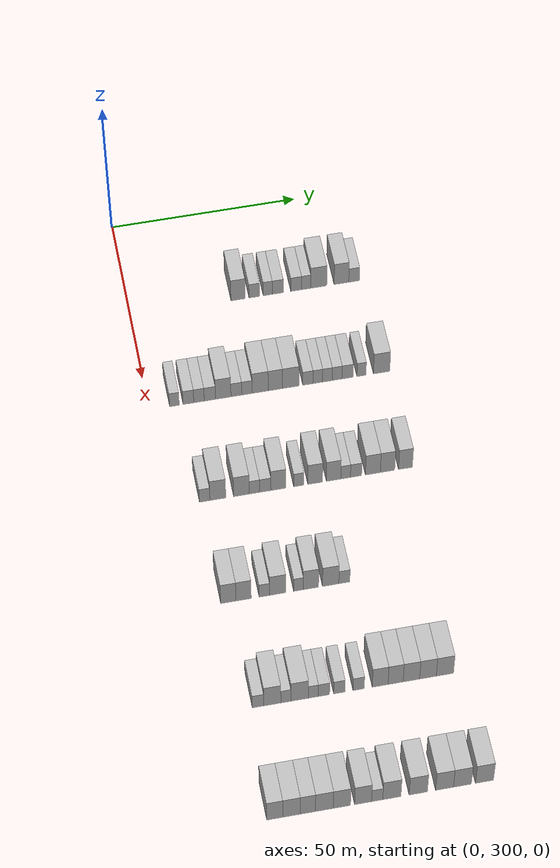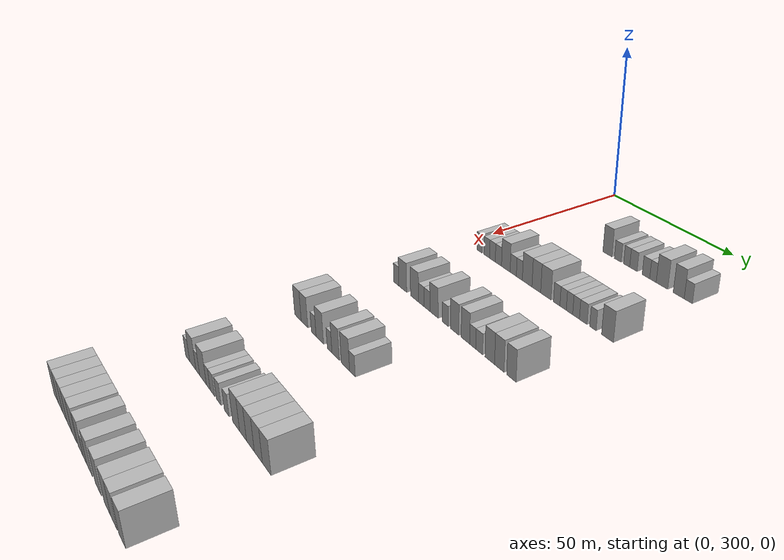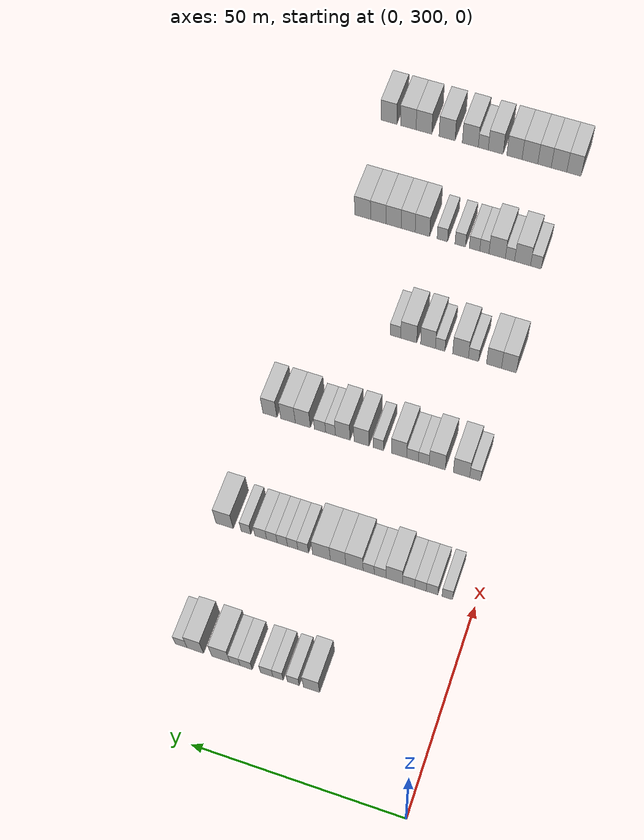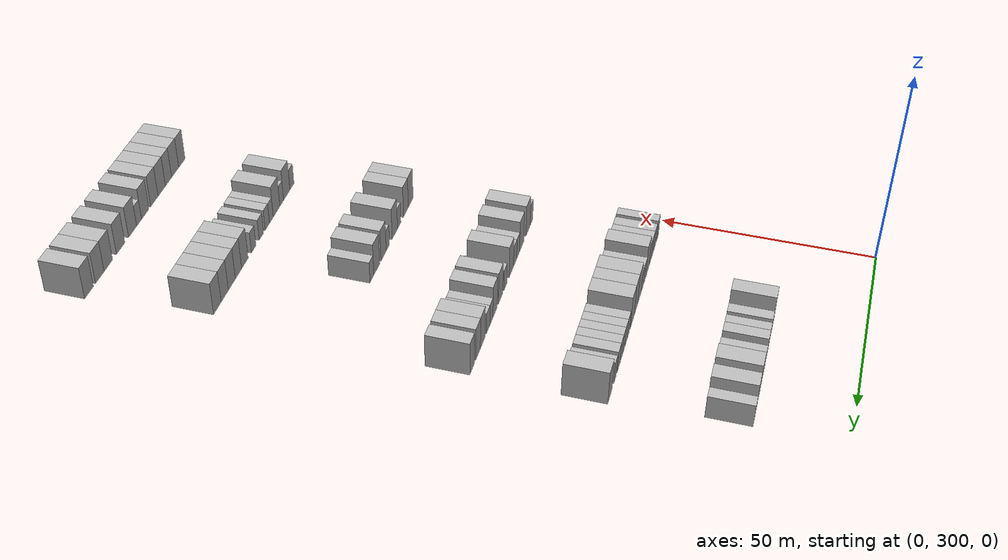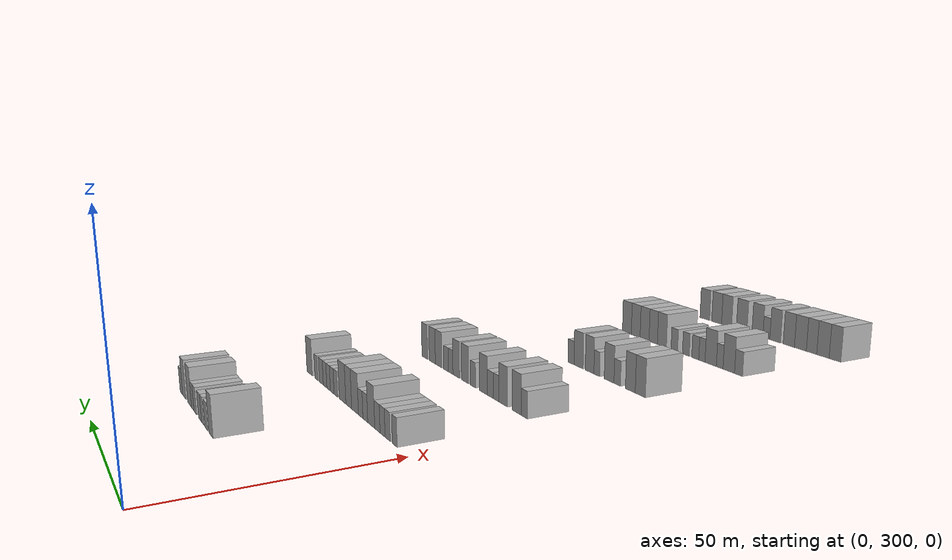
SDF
<sdf version="1.6">
 <world name="default">
  <model name="building_187">
   <static>1</static>
   <pose>25.0000 329.0167 0 0.000000 0.000000 0.000000</pose>
   <link name="link">
    <pose>0 0 4.50 0 0 0</pose>
    <collision name="collision"><geometry><box><size>10.0000 3.8626 9.0000</size></box></geometry></collision>
    <visual name="visual">
     <cast_shadows>0</cast_shadows>
     <geometry><box><size>10.0000 3.8626 9.0000</size></box></geometry>
     <material>
      <script>
       <uri>model://HANNAS_wall/materials/scripts</uri>
       <uri>model://HANNAS_wall/materials/textures</uri>
       <name>vrc/HANNAS_wall</name>
      </script>
     </material>
    </visual>
   </link>
  </model>
  <model name="building_188">
   <static>1</static>
   <pose>25.0000 333.3617 0 0.000000 0.000000 0.000000</pose>
   <link name="link">
    <pose>0 0 3.00 0 0 0</pose>
    <collision name="collision"><geometry><box><size>10.0000 2.8275 6.0000</size></box></geometry></collision>
    <visual name="visual">
     <cast_shadows>0</cast_shadows>
     <geometry><box><size>10.0000 2.8275 6.0000</size></box></geometry>
     <material>
      <script>
       <uri>model://HANNAS_wall/materials/scripts</uri>
       <uri>model://HANNAS_wall/materials/textures</uri>
       <name>vrc/HANNAS_wall</name>
      </script>
     </material>
    </visual>
   </link>
  </model>
  <model name="building_189">
   <static>1</static>
   <pose>25.0000 337.0055 0 0.000000 0.000000 0.000000</pose>
   <link name="link">
    <pose>0 0 3.00 0 0 0</pose>
    <collision name="collision"><geometry><box><size>10.0000 2.4600 6.0000</size></box></geometry></collision>
    <visual name="visual">
     <cast_shadows>0</cast_shadows>
     <geometry><box><size>10.0000 2.4600 6.0000</size></box></geometry>
     <material>
      <script>
       <uri>model://HANNAS_wall/materials/scripts</uri>
       <uri>model://HANNAS_wall/materials/textures</uri>
       <name>vrc/HANNAS_wall</name>
      </script>
     </material>
    </visual>
   </link>
  </model>
  <model name="building_190">
   <static>1</static>
   <pose>25.0000 339.7276 0 0.000000 0.000000 0.000000</pose>
   <link name="link">
    <pose>0 0 3.00 0 0 0</pose>
    <collision name="collision"><geometry><box><size>10.0000 2.9843 6.0000</size></box></geometry></collision>
    <visual name="visual">
     <cast_shadows>0</cast_shadows>
     <geometry><box><size>10.0000 2.9843 6.0000</size></box></geometry>
     <material>
      <script>
       <uri>model://HANNAS_wall/materials/scripts</uri>
       <uri>model://HANNAS_wall/materials/textures</uri>
       <name>vrc/HANNAS_wall</name>
      </script>
     </material>
    </visual>
   </link>
  </model>
  <model name="building_191">
   <static>1</static>
   <pose>25.0000 344.6807 0 0.000000 0.000000 0.000000</pose>
   <link name="link">
    <pose>0 0 3.00 0 0 0</pose>
    <collision name="collision"><geometry><box><size>10.0000 2.9218 6.0000</size></box></geometry></collision>
    <visual name="visual">
     <cast_shadows>0</cast_shadows>
     <geometry><box><size>10.0000 2.9218 6.0000</size></box></geometry>
     <material>
      <script>
       <uri>model://HANNAS_wall/materials/scripts</uri>
       <uri>model://HANNAS_wall/materials/textures</uri>
       <name>vrc/HANNAS_wall</name>
      </script>
     </material>
    </visual>
   </link>
  </model>
  <model name="building_192">
   <static>1</static>
   <pose>25.0000 347.3829 0 0.000000 0.000000 0.000000</pose>
   <link name="link">
    <pose>0 0 3.00 0 0 0</pose>
    <collision name="collision"><geometry><box><size>10.0000 2.4827 6.0000</size></box></geometry></collision>
    <visual name="visual">
     <cast_shadows>0</cast_shadows>
     <geometry><box><size>10.0000 2.4827 6.0000</size></box></geometry>
     <material>
      <script>
       <uri>model://HANNAS_wall/materials/scripts</uri>
       <uri>model://HANNAS_wall/materials/textures</uri>
       <name>vrc/HANNAS_wall</name>
      </script>
     </material>
    </visual>
   </link>
  </model>
  <model name="building_193">
   <static>1</static>
   <pose>25.0000 350.7998 0 0.000000 0.000000 0.000000</pose>
   <link name="link">
    <pose>0 0 4.50 0 0 0</pose>
    <collision name="collision"><geometry><box><size>10.0000 4.3511 9.0000</size></box></geometry></collision>
    <visual name="visual">
     <cast_shadows>0</cast_shadows>
     <geometry><box><size>10.0000 4.3511 9.0000</size></box></geometry>
     <material>
      <script>
       <uri>model://HANNAS_wall/materials/scripts</uri>
       <uri>model://HANNAS_wall/materials/textures</uri>
       <name>vrc/HANNAS_wall</name>
      </script>
     </material>
    </visual>
   </link>
  </model>
  <model name="building_194">
   <static>1</static>
   <pose>25.0000 356.9652 0 0.000000 0.000000 0.000000</pose>
   <link name="link">
    <pose>0 0 4.50 0 0 0</pose>
    <collision name="collision"><geometry><box><size>10.0000 3.9796 9.0000</size></box></geometry></collision>
    <visual name="visual">
     <cast_shadows>0</cast_shadows>
     <geometry><box><size>10.0000 3.9796 9.0000</size></box></geometry>
     <material>
      <script>
       <uri>model://HANNAS_wall/materials/scripts</uri>
       <uri>model://HANNAS_wall/materials/textures</uri>
       <name>vrc/HANNAS_wall</name>
      </script>
     </material>
    </visual>
   </link>
  </model>
  <model name="building_195">
   <static>1</static>
   <pose>25.0000 360.4065 0 0.000000 0.000000 0.000000</pose>
   <link name="link">
    <pose>0 0 3.00 0 0 0</pose>
    <collision name="collision"><geometry><box><size>10.0000 2.9032 6.0000</size></box></geometry></collision>
    <visual name="visual">
     <cast_shadows>0</cast_shadows>
     <geometry><box><size>10.0000 2.9032 6.0000</size></box></geometry>
     <material>
      <script>
       <uri>model://HANNAS_wall/materials/scripts</uri>
       <uri>model://HANNAS_wall/materials/textures</uri>
       <name>vrc/HANNAS_wall</name>
      </script>
     </material>
    </visual>
   </link>
  </model>
  <model name="building_403">
   <static>1</static>
   <pose>55.0000 306.7584 0 0.000000 0.000000 0.000000</pose>
   <link name="link">
    <pose>0 0 3.00 0 0 0</pose>
    <collision name="collision"><geometry><box><size>10.0000 2.5424 6.0000</size></box></geometry></collision>
    <visual name="visual">
     <cast_shadows>0</cast_shadows>
     <geometry><box><size>10.0000 2.5424 6.0000</size></box></geometry>
     <material>
      <script>
       <uri>model://HANNAS_wall/materials/scripts</uri>
       <uri>model://HANNAS_wall/materials/textures</uri>
       <name>vrc/HANNAS_wall</name>
      </script>
     </material>
    </visual>
   </link>
  </model>
  <model name="building_404">
   <static>1</static>
   <pose>55.0000 310.4410 0 0.000000 0.000000 0.000000</pose>
   <link name="link">
    <pose>0 0 3.00 0 0 0</pose>
    <collision name="collision"><geometry><box><size>10.0000 2.8229 6.0000</size></box></geometry></collision>
    <visual name="visual">
     <cast_shadows>0</cast_shadows>
     <geometry><box><size>10.0000 2.8229 6.0000</size></box></geometry>
     <material>
      <script>
       <uri>model://HANNAS_wall/materials/scripts</uri>
       <uri>model://HANNAS_wall/materials/textures</uri>
       <name>vrc/HANNAS_wall</name>
      </script>
     </material>
    </visual>
   </link>
  </model>
  <model name="building_405">
   <static>1</static>
   <pose>55.0000 313.2252 0 0.000000 0.000000 0.000000</pose>
   <link name="link">
    <pose>0 0 3.00 0 0 0</pose>
    <collision name="collision"><geometry><box><size>10.0000 2.7456 6.0000</size></box></geometry></collision>
    <visual name="visual">
     <cast_shadows>0</cast_shadows>
     <geometry><box><size>10.0000 2.7456 6.0000</size></box></geometry>
     <material>
      <script>
       <uri>model://HANNAS_wall/materials/scripts</uri>
       <uri>model://HANNAS_wall/materials/textures</uri>
       <name>vrc/HANNAS_wall</name>
      </script>
     </material>
    </visual>
   </link>
  </model>
  <model name="building_406">
   <static>1</static>
   <pose>55.0000 316.0895 0 0.000000 0.000000 0.000000</pose>
   <link name="link">
    <pose>0 0 3.00 0 0 0</pose>
    <collision name="collision"><geometry><box><size>10.0000 2.9829 6.0000</size></box></geometry></collision>
    <visual name="visual">
     <cast_shadows>0</cast_shadows>
     <geometry><box><size>10.0000 2.9829 6.0000</size></box></geometry>
     <material>
      <script>
       <uri>model://HANNAS_wall/materials/scripts</uri>
       <uri>model://HANNAS_wall/materials/textures</uri>
       <name>vrc/HANNAS_wall</name>
      </script>
     </material>
    </visual>
   </link>
  </model>
  <model name="building_407">
   <static>1</static>
   <pose>55.0000 319.6038 0 0.000000 0.000000 0.000000</pose>
   <link name="link">
    <pose>0 0 4.50 0 0 0</pose>
    <collision name="collision"><geometry><box><size>10.0000 4.0458 9.0000</size></box></geometry></collision>
    <visual name="visual">
     <cast_shadows>0</cast_shadows>
     <geometry><box><size>10.0000 4.0458 9.0000</size></box></geometry>
     <material>
      <script>
       <uri>model://HANNAS_wall/materials/scripts</uri>
       <uri>model://HANNAS_wall/materials/textures</uri>
       <name>vrc/HANNAS_wall</name>
      </script>
     </material>
    </visual>
   </link>
  </model>
  <model name="building_408">
   <static>1</static>
   <pose>55.0000 323.0591 0 0.000000 0.000000 0.000000</pose>
   <link name="link">
    <pose>0 0 3.00 0 0 0</pose>
    <collision name="collision"><geometry><box><size>10.0000 2.8647 6.0000</size></box></geometry></collision>
    <visual name="visual">
     <cast_shadows>0</cast_shadows>
     <geometry><box><size>10.0000 2.8647 6.0000</size></box></geometry>
     <material>
      <script>
       <uri>model://HANNAS_wall/materials/scripts</uri>
       <uri>model://HANNAS_wall/materials/textures</uri>
       <name>vrc/HANNAS_wall</name>
      </script>
     </material>
    </visual>
   </link>
  </model>
  <model name="building_409">
   <static>1</static>
   <pose>55.0000 325.8462 0 0.000000 0.000000 0.000000</pose>
   <link name="link">
    <pose>0 0 3.00 0 0 0</pose>
    <collision name="collision"><geometry><box><size>10.0000 2.7095 6.0000</size></box></geometry></collision>
    <visual name="visual">
     <cast_shadows>0</cast_shadows>
     <geometry><box><size>10.0000 2.7095 6.0000</size></box></geometry>
     <material>
      <script>
       <uri>model://HANNAS_wall/materials/scripts</uri>
       <uri>model://HANNAS_wall/materials/textures</uri>
       <name>vrc/HANNAS_wall</name>
      </script>
     </material>
    </visual>
   </link>
  </model>
  <model name="building_410">
   <static>1</static>
   <pose>55.0000 329.3355 0 0.000000 0.000000 0.000000</pose>
   <link name="link">
    <pose>0 0 4.50 0 0 0</pose>
    <collision name="collision"><geometry><box><size>10.0000 4.2691 9.0000</size></box></geometry></collision>
    <visual name="visual">
     <cast_shadows>0</cast_shadows>
     <geometry><box><size>10.0000 4.2691 9.0000</size></box></geometry>
     <material>
      <script>
       <uri>model://HANNAS_wall/materials/scripts</uri>
       <uri>model://HANNAS_wall/materials/textures</uri>
       <name>vrc/HANNAS_wall</name>
      </script>
     </material>
    </visual>
   </link>
  </model>
  <model name="building_411">
   <static>1</static>
   <pose>55.0000 333.3582 0 0.000000 0.000000 0.000000</pose>
   <link name="link">
    <pose>0 0 4.50 0 0 0</pose>
    <collision name="collision"><geometry><box><size>10.0000 3.7762 9.0000</size></box></geometry></collision>
    <visual name="visual">
     <cast_shadows>0</cast_shadows>
     <geometry><box><size>10.0000 3.7762 9.0000</size></box></geometry>
     <material>
      <script>
       <uri>model://HANNAS_wall/materials/scripts</uri>
       <uri>model://HANNAS_wall/materials/textures</uri>
       <name>vrc/HANNAS_wall</name>
      </script>
     </material>
    </visual>
   </link>
  </model>
  <model name="building_412">
   <static>1</static>
   <pose>55.0000 337.4349 0 0.000000 0.000000 0.000000</pose>
   <link name="link">
    <pose>0 0 4.50 0 0 0</pose>
    <collision name="collision"><geometry><box><size>10.0000 4.3773 9.0000</size></box></geometry></collision>
    <visual name="visual">
     <cast_shadows>0</cast_shadows>
     <geometry><box><size>10.0000 4.3773 9.0000</size></box></geometry>
     <material>
      <script>
       <uri>model://HANNAS_wall/materials/scripts</uri>
       <uri>model://HANNAS_wall/materials/textures</uri>
       <name>vrc/HANNAS_wall</name>
      </script>
     </material>
    </visual>
   </link>
  </model>
  <model name="building_413">
   <static>1</static>
   <pose>55.0000 341.9503 0 0.000000 0.000000 0.000000</pose>
   <link name="link">
    <pose>0 0 3.00 0 0 0</pose>
    <collision name="collision"><geometry><box><size>10.0000 2.6535 6.0000</size></box></geometry></collision>
    <visual name="visual">
     <cast_shadows>0</cast_shadows>
     <geometry><box><size>10.0000 2.6535 6.0000</size></box></geometry>
     <material>
      <script>
       <uri>model://HANNAS_wall/materials/scripts</uri>
       <uri>model://HANNAS_wall/materials/textures</uri>
       <name>vrc/HANNAS_wall</name>
      </script>
     </material>
    </visual>
   </link>
  </model>
  <model name="building_414">
   <static>1</static>
   <pose>55.0000 344.5648 0 0.000000 0.000000 0.000000</pose>
   <link name="link">
    <pose>0 0 3.00 0 0 0</pose>
    <collision name="collision"><geometry><box><size>10.0000 2.5755 6.0000</size></box></geometry></collision>
    <visual name="visual">
     <cast_shadows>0</cast_shadows>
     <geometry><box><size>10.0000 2.5755 6.0000</size></box></geometry>
     <material>
      <script>
       <uri>model://HANNAS_wall/materials/scripts</uri>
       <uri>model://HANNAS_wall/materials/textures</uri>
       <name>vrc/HANNAS_wall</name>
      </script>
     </material>
    </visual>
   </link>
  </model>
  <model name="building_415">
   <static>1</static>
   <pose>55.0000 347.1284 0 0.000000 0.000000 0.000000</pose>
   <link name="link">
    <pose>0 0 3.00 0 0 0</pose>
    <collision name="collision"><geometry><box><size>10.0000 2.5516 6.0000</size></box></geometry></collision>
    <visual name="visual">
     <cast_shadows>0</cast_shadows>
     <geometry><box><size>10.0000 2.5516 6.0000</size></box></geometry>
     <material>
      <script>
       <uri>model://HANNAS_wall/materials/scripts</uri>
       <uri>model://HANNAS_wall/materials/textures</uri>
       <name>vrc/HANNAS_wall</name>
      </script>
     </material>
    </visual>
   </link>
  </model>
  <model name="building_416">
   <static>1</static>
   <pose>55.0000 349.7211 0 0.000000 0.000000 0.000000</pose>
   <link name="link">
    <pose>0 0 3.00 0 0 0</pose>
    <collision name="collision"><geometry><box><size>10.0000 2.6340 6.0000</size></box></geometry></collision>
    <visual name="visual">
     <cast_shadows>0</cast_shadows>
     <geometry><box><size>10.0000 2.6340 6.0000</size></box></geometry>
     <material>
      <script>
       <uri>model://HANNAS_wall/materials/scripts</uri>
       <uri>model://HANNAS_wall/materials/textures</uri>
       <name>vrc/HANNAS_wall</name>
      </script>
     </material>
    </visual>
   </link>
  </model>
  <model name="building_417">
   <static>1</static>
   <pose>55.0000 352.5141 0 0.000000 0.000000 0.000000</pose>
   <link name="link">
    <pose>0 0 3.00 0 0 0</pose>
    <collision name="collision"><geometry><box><size>10.0000 2.9520 6.0000</size></box></geometry></collision>
    <visual name="visual">
     <cast_shadows>0</cast_shadows>
     <geometry><box><size>10.0000 2.9520 6.0000</size></box></geometry>
     <material>
      <script>
       <uri>model://HANNAS_wall/materials/scripts</uri>
       <uri>model://HANNAS_wall/materials/textures</uri>
       <name>vrc/HANNAS_wall</name>
      </script>
     </material>
    </visual>
   </link>
  </model>
  <model name="building_418">
   <static>1</static>
   <pose>55.0000 356.1965 0 0.000000 0.000000 0.000000</pose>
   <link name="link">
    <pose>0 0 3.00 0 0 0</pose>
    <collision name="collision"><geometry><box><size>10.0000 2.4128 6.0000</size></box></geometry></collision>
    <visual name="visual">
     <cast_shadows>0</cast_shadows>
     <geometry><box><size>10.0000 2.4128 6.0000</size></box></geometry>
     <material>
      <script>
       <uri>model://HANNAS_wall/materials/scripts</uri>
       <uri>model://HANNAS_wall/materials/textures</uri>
       <name>vrc/HANNAS_wall</name>
      </script>
     </material>
    </visual>
   </link>
  </model>
  <model name="building_419">
   <static>1</static>
   <pose>55.0000 361.5701 0 0.000000 0.000000 0.000000</pose>
   <link name="link">
    <pose>0 0 4.50 0 0 0</pose>
    <collision name="collision"><geometry><box><size>10.0000 4.3344 9.0000</size></box></geometry></collision>
    <visual name="visual">
     <cast_shadows>0</cast_shadows>
     <geometry><box><size>10.0000 4.3344 9.0000</size></box></geometry>
     <material>
      <script>
       <uri>model://HANNAS_wall/materials/scripts</uri>
       <uri>model://HANNAS_wall/materials/textures</uri>
       <name>vrc/HANNAS_wall</name>
      </script>
     </material>
    </visual>
   </link>
  </model>
  <model name="building_627">
   <static>1</static>
   <pose>85.0000 309.4168 0 0.000000 0.000000 0.000000</pose>
   <link name="link">
    <pose>0 0 3.00 0 0 0</pose>
    <collision name="collision"><geometry><box><size>10.0000 2.7048 6.0000</size></box></geometry></collision>
    <visual name="visual">
     <cast_shadows>0</cast_shadows>
     <geometry><box><size>10.0000 2.7048 6.0000</size></box></geometry>
     <material>
      <script>
       <uri>model://HANNAS_wall/materials/scripts</uri>
       <uri>model://HANNAS_wall/materials/textures</uri>
       <name>vrc/HANNAS_wall</name>
      </script>
     </material>
    </visual>
   </link>
  </model>
  <model name="building_628">
   <static>1</static>
   <pose>85.0000 312.8184 0 0.000000 0.000000 0.000000</pose>
   <link name="link">
    <pose>0 0 4.50 0 0 0</pose>
    <collision name="collision"><geometry><box><size>10.0000 4.0985 9.0000</size></box></geometry></collision>
    <visual name="visual">
     <cast_shadows>0</cast_shadows>
     <geometry><box><size>10.0000 4.0985 9.0000</size></box></geometry>
     <material>
      <script>
       <uri>model://HANNAS_wall/materials/scripts</uri>
       <uri>model://HANNAS_wall/materials/textures</uri>
       <name>vrc/HANNAS_wall</name>
      </script>
     </material>
    </visual>
   </link>
  </model>
  <model name="building_629">
   <static>1</static>
   <pose>85.0000 318.8882 0 0.000000 0.000000 0.000000</pose>
   <link name="link">
    <pose>0 0 4.50 0 0 0</pose>
    <collision name="collision"><geometry><box><size>10.0000 4.0410 9.0000</size></box></geometry></collision>
    <visual name="visual">
     <cast_shadows>0</cast_shadows>
     <geometry><box><size>10.0000 4.0410 9.0000</size></box></geometry>
     <material>
      <script>
       <uri>model://HANNAS_wall/materials/scripts</uri>
       <uri>model://HANNAS_wall/materials/textures</uri>
       <name>vrc/HANNAS_wall</name>
      </script>
     </material>
    </visual>
   </link>
  </model>
  <model name="building_630">
   <static>1</static>
   <pose>85.0000 322.2535 0 0.000000 0.000000 0.000000</pose>
   <link name="link">
    <pose>0 0 3.00 0 0 0</pose>
    <collision name="collision"><geometry><box><size>10.0000 2.6897 6.0000</size></box></geometry></collision>
    <visual name="visual">
     <cast_shadows>0</cast_shadows>
     <geometry><box><size>10.0000 2.6897 6.0000</size></box></geometry>
     <material>
      <script>
       <uri>model://HANNAS_wall/materials/scripts</uri>
       <uri>model://HANNAS_wall/materials/textures</uri>
       <name>vrc/HANNAS_wall</name>
      </script>
     </material>
    </visual>
   </link>
  </model>
  <model name="building_631">
   <static>1</static>
   <pose>85.0000 325.0554 0 0.000000 0.000000 0.000000</pose>
   <link name="link">
    <pose>0 0 3.00 0 0 0</pose>
    <collision name="collision"><geometry><box><size>10.0000 2.9140 6.0000</size></box></geometry></collision>
    <visual name="visual">
     <cast_shadows>0</cast_shadows>
     <geometry><box><size>10.0000 2.9140 6.0000</size></box></geometry>
     <material>
      <script>
       <uri>model://HANNAS_wall/materials/scripts</uri>
       <uri>model://HANNAS_wall/materials/textures</uri>
       <name>vrc/HANNAS_wall</name>
      </script>
     </material>
    </visual>
   </link>
  </model>
  <model name="building_632">
   <static>1</static>
   <pose>85.0000 328.4569 0 0.000000 0.000000 0.000000</pose>
   <link name="link">
    <pose>0 0 4.50 0 0 0</pose>
    <collision name="collision"><geometry><box><size>10.0000 3.8890 9.0000</size></box></geometry></collision>
    <visual name="visual">
     <cast_shadows>0</cast_shadows>
     <geometry><box><size>10.0000 3.8890 9.0000</size></box></geometry>
     <material>
      <script>
       <uri>model://HANNAS_wall/materials/scripts</uri>
       <uri>model://HANNAS_wall/materials/textures</uri>
       <name>vrc/HANNAS_wall</name>
      </script>
     </material>
    </visual>
   </link>
  </model>
  <model name="building_633">
   <static>1</static>
   <pose>85.0000 333.7280 0 0.000000 0.000000 0.000000</pose>
   <link name="link">
    <pose>0 0 3.00 0 0 0</pose>
    <collision name="collision"><geometry><box><size>10.0000 2.6531 6.0000</size></box></geometry></collision>
    <visual name="visual">
     <cast_shadows>0</cast_shadows>
     <geometry><box><size>10.0000 2.6531 6.0000</size></box></geometry>
     <material>
      <script>
       <uri>model://HANNAS_wall/materials/scripts</uri>
       <uri>model://HANNAS_wall/materials/textures</uri>
       <name>vrc/HANNAS_wall</name>
      </script>
     </material>
    </visual>
   </link>
  </model>
  <model name="building_634">
   <static>1</static>
   <pose>85.0000 337.9695 0 0.000000 0.000000 0.000000</pose>
   <link name="link">
    <pose>0 0 4.50 0 0 0</pose>
    <collision name="collision"><geometry><box><size>10.0000 3.8299 9.0000</size></box></geometry></collision>
    <visual name="visual">
     <cast_shadows>0</cast_shadows>
     <geometry><box><size>10.0000 3.8299 9.0000</size></box></geometry>
     <material>
      <script>
       <uri>model://HANNAS_wall/materials/scripts</uri>
       <uri>model://HANNAS_wall/materials/textures</uri>
       <name>vrc/HANNAS_wall</name>
      </script>
     </material>
    </visual>
   </link>
  </model>
  <model name="building_635">
   <static>1</static>
   <pose>85.0000 342.7593 0 0.000000 0.000000 0.000000</pose>
   <link name="link">
    <pose>0 0 4.50 0 0 0</pose>
    <collision name="collision"><geometry><box><size>10.0000 3.7498 9.0000</size></box></geometry></collision>
    <visual name="visual">
     <cast_shadows>0</cast_shadows>
     <geometry><box><size>10.0000 3.7498 9.0000</size></box></geometry>
     <material>
      <script>
       <uri>model://HANNAS_wall/materials/scripts</uri>
       <uri>model://HANNAS_wall/materials/textures</uri>
       <name>vrc/HANNAS_wall</name>
      </script>
     </material>
    </visual>
   </link>
  </model>
  <model name="building_636">
   <static>1</static>
   <pose>85.0000 345.8847 0 0.000000 0.000000 0.000000</pose>
   <link name="link">
    <pose>0 0 3.00 0 0 0</pose>
    <collision name="collision"><geometry><box><size>10.0000 2.5010 6.0000</size></box></geometry></collision>
    <visual name="visual">
     <cast_shadows>0</cast_shadows>
     <geometry><box><size>10.0000 2.5010 6.0000</size></box></geometry>
     <material>
      <script>
       <uri>model://HANNAS_wall/materials/scripts</uri>
       <uri>model://HANNAS_wall/materials/textures</uri>
       <name>vrc/HANNAS_wall</name>
      </script>
     </material>
    </visual>
   </link>
  </model>
  <model name="building_637">
   <static>1</static>
   <pose>85.0000 348.5860 0 0.000000 0.000000 0.000000</pose>
   <link name="link">
    <pose>0 0 3.00 0 0 0</pose>
    <collision name="collision"><geometry><box><size>10.0000 2.9015 6.0000</size></box></geometry></collision>
    <visual name="visual">
     <cast_shadows>0</cast_shadows>
     <geometry><box><size>10.0000 2.9015 6.0000</size></box></geometry>
     <material>
      <script>
       <uri>model://HANNAS_wall/materials/scripts</uri>
       <uri>model://HANNAS_wall/materials/textures</uri>
       <name>vrc/HANNAS_wall</name>
      </script>
     </material>
    </visual>
   </link>
  </model>
  <model name="building_638">
   <static>1</static>
   <pose>85.0000 352.9813 0 0.000000 0.000000 0.000000</pose>
   <link name="link">
    <pose>0 0 4.50 0 0 0</pose>
    <collision name="collision"><geometry><box><size>10.0000 3.8892 9.0000</size></box></geometry></collision>
    <visual name="visual">
     <cast_shadows>0</cast_shadows>
     <geometry><box><size>10.0000 3.8892 9.0000</size></box></geometry>
     <material>
      <script>
       <uri>model://HANNAS_wall/materials/scripts</uri>
       <uri>model://HANNAS_wall/materials/textures</uri>
       <name>vrc/HANNAS_wall</name>
      </script>
     </material>
    </visual>
   </link>
  </model>
  <model name="building_639">
   <static>1</static>
   <pose>85.0000 356.7987 0 0.000000 0.000000 0.000000</pose>
   <link name="link">
    <pose>0 0 4.50 0 0 0</pose>
    <collision name="collision"><geometry><box><size>10.0000 3.7455 9.0000</size></box></geometry></collision>
    <visual name="visual">
     <cast_shadows>0</cast_shadows>
     <geometry><box><size>10.0000 3.7455 9.0000</size></box></geometry>
     <material>
      <script>
       <uri>model://HANNAS_wall/materials/scripts</uri>
       <uri>model://HANNAS_wall/materials/textures</uri>
       <name>vrc/HANNAS_wall</name>
      </script>
     </material>
    </visual>
   </link>
  </model>
  <model name="building_640">
   <static>1</static>
   <pose>85.0000 361.4824 0 0.000000 0.000000 0.000000</pose>
   <link name="link">
    <pose>0 0 4.50 0 0 0</pose>
    <collision name="collision"><geometry><box><size>10.0000 3.6220 9.0000</size></box></geometry></collision>
    <visual name="visual">
     <cast_shadows>0</cast_shadows>
     <geometry><box><size>10.0000 3.6220 9.0000</size></box></geometry>
     <material>
      <script>
       <uri>model://HANNAS_wall/materials/scripts</uri>
       <uri>model://HANNAS_wall/materials/textures</uri>
       <name>vrc/HANNAS_wall</name>
      </script>
     </material>
    </visual>
   </link>
  </model>
  <model name="building_841">
   <static>1</static>
   <pose>115.0000 310.0723 0 0.000000 0.000000 0.000000</pose>
   <link name="link">
    <pose>0 0 4.50 0 0 0</pose>
    <collision name="collision"><geometry><box><size>10.0000 3.8425 9.0000</size></box></geometry></collision>
    <visual name="visual">
     <cast_shadows>0</cast_shadows>
     <geometry><box><size>10.0000 3.8425 9.0000</size></box></geometry>
     <material>
      <script>
       <uri>model://HANNAS_wall/materials/scripts</uri>
       <uri>model://HANNAS_wall/materials/textures</uri>
       <name>vrc/HANNAS_wall</name>
      </script>
     </material>
    </visual>
   </link>
  </model>
  <model name="building_842">
   <static>1</static>
   <pose>115.0000 313.9199 0 0.000000 0.000000 0.000000</pose>
   <link name="link">
    <pose>0 0 4.50 0 0 0</pose>
    <collision name="collision"><geometry><box><size>10.0000 3.8527 9.0000</size></box></geometry></collision>
    <visual name="visual">
     <cast_shadows>0</cast_shadows>
     <geometry><box><size>10.0000 3.8527 9.0000</size></box></geometry>
     <material>
      <script>
       <uri>model://HANNAS_wall/materials/scripts</uri>
       <uri>model://HANNAS_wall/materials/textures</uri>
       <name>vrc/HANNAS_wall</name>
      </script>
     </material>
    </visual>
   </link>
  </model>
  <model name="building_843">
   <static>1</static>
   <pose>115.0000 319.1734 0 0.000000 0.000000 0.000000</pose>
   <link name="link">
    <pose>0 0 3.00 0 0 0</pose>
    <collision name="collision"><geometry><box><size>10.0000 2.6544 6.0000</size></box></geometry></collision>
    <visual name="visual">
     <cast_shadows>0</cast_shadows>
     <geometry><box><size>10.0000 2.6544 6.0000</size></box></geometry>
     <material>
      <script>
       <uri>model://HANNAS_wall/materials/scripts</uri>
       <uri>model://HANNAS_wall/materials/textures</uri>
       <name>vrc/HANNAS_wall</name>
      </script>
     </material>
    </visual>
   </link>
  </model>
  <model name="building_844">
   <static>1</static>
   <pose>115.0000 322.5384 0 0.000000 0.000000 0.000000</pose>
   <link name="link">
    <pose>0 0 4.50 0 0 0</pose>
    <collision name="collision"><geometry><box><size>10.0000 4.0757 9.0000</size></box></geometry></collision>
    <visual name="visual">
     <cast_shadows>0</cast_shadows>
     <geometry><box><size>10.0000 4.0757 9.0000</size></box></geometry>
     <material>
      <script>
       <uri>model://HANNAS_wall/materials/scripts</uri>
       <uri>model://HANNAS_wall/materials/textures</uri>
       <name>vrc/HANNAS_wall</name>
      </script>
     </material>
    </visual>
   </link>
  </model>
  <model name="building_845">
   <static>1</static>
   <pose>115.0000 327.8118 0 0.000000 0.000000 0.000000</pose>
   <link name="link">
    <pose>0 0 3.00 0 0 0</pose>
    <collision name="collision"><geometry><box><size>10.0000 2.4710 6.0000</size></box></geometry></collision>
    <visual name="visual">
     <cast_shadows>0</cast_shadows>
     <geometry><box><size>10.0000 2.4710 6.0000</size></box></geometry>
     <material>
      <script>
       <uri>model://HANNAS_wall/materials/scripts</uri>
       <uri>model://HANNAS_wall/materials/textures</uri>
       <name>vrc/HANNAS_wall</name>
      </script>
     </material>
    </visual>
   </link>
  </model>
  <model name="building_846">
   <static>1</static>
   <pose>115.0000 330.9726 0 0.000000 0.000000 0.000000</pose>
   <link name="link">
    <pose>0 0 4.50 0 0 0</pose>
    <collision name="collision"><geometry><box><size>10.0000 3.8507 9.0000</size></box></geometry></collision>
    <visual name="visual">
     <cast_shadows>0</cast_shadows>
     <geometry><box><size>10.0000 3.8507 9.0000</size></box></geometry>
     <material>
      <script>
       <uri>model://HANNAS_wall/materials/scripts</uri>
       <uri>model://HANNAS_wall/materials/textures</uri>
       <name>vrc/HANNAS_wall</name>
      </script>
     </material>
    </visual>
   </link>
  </model>
  <model name="building_847">
   <static>1</static>
   <pose>115.0000 335.9765 0 0.000000 0.000000 0.000000</pose>
   <link name="link">
    <pose>0 0 4.50 0 0 0</pose>
    <collision name="collision"><geometry><box><size>10.0000 4.1570 9.0000</size></box></geometry></collision>
    <visual name="visual">
     <cast_shadows>0</cast_shadows>
     <geometry><box><size>10.0000 4.1570 9.0000</size></box></geometry>
     <material>
      <script>
       <uri>model://HANNAS_wall/materials/scripts</uri>
       <uri>model://HANNAS_wall/materials/textures</uri>
       <name>vrc/HANNAS_wall</name>
      </script>
     </material>
    </visual>
   </link>
  </model>
  <model name="building_848">
   <static>1</static>
   <pose>115.0000 339.4496 0 0.000000 0.000000 0.000000</pose>
   <link name="link">
    <pose>0 0 3.00 0 0 0</pose>
    <collision name="collision"><geometry><box><size>10.0000 2.7892 6.0000</size></box></geometry></collision>
    <visual name="visual">
     <cast_shadows>0</cast_shadows>
     <geometry><box><size>10.0000 2.7892 6.0000</size></box></geometry>
     <material>
      <script>
       <uri>model://HANNAS_wall/materials/scripts</uri>
       <uri>model://HANNAS_wall/materials/textures</uri>
       <name>vrc/HANNAS_wall</name>
      </script>
     </material>
    </visual>
   </link>
  </model>
  <model name="building_1063">
   <static>1</static>
   <pose>145.0000 311.9592 0 0.000000 0.000000 0.000000</pose>
   <link name="link">
    <pose>0 0 3.00 0 0 0</pose>
    <collision name="collision"><geometry><box><size>10.0000 2.8404 6.0000</size></box></geometry></collision>
    <visual name="visual">
     <cast_shadows>0</cast_shadows>
     <geometry><box><size>10.0000 2.8404 6.0000</size></box></geometry>
     <material>
      <script>
       <uri>model://HANNAS_wall/materials/scripts</uri>
       <uri>model://HANNAS_wall/materials/textures</uri>
       <name>vrc/HANNAS_wall</name>
      </script>
     </material>
    </visual>
   </link>
  </model>
  <model name="building_1064">
   <static>1</static>
   <pose>145.0000 315.4956 0 0.000000 0.000000 0.000000</pose>
   <link name="link">
    <pose>0 0 4.50 0 0 0</pose>
    <collision name="collision"><geometry><box><size>10.0000 4.2325 9.0000</size></box></geometry></collision>
    <visual name="visual">
     <cast_shadows>0</cast_shadows>
     <geometry><box><size>10.0000 4.2325 9.0000</size></box></geometry>
     <material>
      <script>
       <uri>model://HANNAS_wall/materials/scripts</uri>
       <uri>model://HANNAS_wall/materials/textures</uri>
       <name>vrc/HANNAS_wall</name>
      </script>
     </material>
    </visual>
   </link>
  </model>
  <model name="building_1065">
   <static>1</static>
   <pose>145.0000 318.8446 0 0.000000 0.000000 0.000000</pose>
   <link name="link">
    <pose>0 0 3.00 0 0 0</pose>
    <collision name="collision"><geometry><box><size>10.0000 2.4656 6.0000</size></box></geometry></collision>
    <visual name="visual">
     <cast_shadows>0</cast_shadows>
     <geometry><box><size>10.0000 2.4656 6.0000</size></box></geometry>
     <material>
      <script>
       <uri>model://HANNAS_wall/materials/scripts</uri>
       <uri>model://HANNAS_wall/materials/textures</uri>
       <name>vrc/HANNAS_wall</name>
      </script>
     </material>
    </visual>
   </link>
  </model>
  <model name="building_1066">
   <static>1</static>
   <pose>145.0000 322.2554 0 0.000000 0.000000 0.000000</pose>
   <link name="link">
    <pose>0 0 4.50 0 0 0</pose>
    <collision name="collision"><geometry><box><size>10.0000 4.3560 9.0000</size></box></geometry></collision>
    <visual name="visual">
     <cast_shadows>0</cast_shadows>
     <geometry><box><size>10.0000 4.3560 9.0000</size></box></geometry>
     <material>
      <script>
       <uri>model://HANNAS_wall/materials/scripts</uri>
       <uri>model://HANNAS_wall/materials/textures</uri>
       <name>vrc/HANNAS_wall</name>
      </script>
     </material>
    </visual>
   </link>
  </model>
  <model name="building_1067">
   <static>1</static>
   <pose>145.0000 325.6610 0 0.000000 0.000000 0.000000</pose>
   <link name="link">
    <pose>0 0 3.00 0 0 0</pose>
    <collision name="collision"><geometry><box><size>10.0000 2.4553 6.0000</size></box></geometry></collision>
    <visual name="visual">
     <cast_shadows>0</cast_shadows>
     <geometry><box><size>10.0000 2.4553 6.0000</size></box></geometry>
     <material>
      <script>
       <uri>model://HANNAS_wall/materials/scripts</uri>
       <uri>model://HANNAS_wall/materials/textures</uri>
       <name>vrc/HANNAS_wall</name>
      </script>
     </material>
    </visual>
   </link>
  </model>
  <model name="building_1068">
   <static>1</static>
   <pose>145.0000 328.2906 0 0.000000 0.000000 0.000000</pose>
   <link name="link">
    <pose>0 0 3.00 0 0 0</pose>
    <collision name="collision"><geometry><box><size>10.0000 2.8038 6.0000</size></box></geometry></collision>
    <visual name="visual">
     <cast_shadows>0</cast_shadows>
     <geometry><box><size>10.0000 2.8038 6.0000</size></box></geometry>
     <material>
      <script>
       <uri>model://HANNAS_wall/materials/scripts</uri>
       <uri>model://HANNAS_wall/materials/textures</uri>
       <name>vrc/HANNAS_wall</name>
      </script>
     </material>
    </visual>
   </link>
  </model>
  <model name="building_1069">
   <static>1</static>
   <pose>145.0000 332.0954 0 0.000000 0.000000 0.000000</pose>
   <link name="link">
    <pose>0 0 3.00 0 0 0</pose>
    <collision name="collision"><geometry><box><size>10.0000 2.8058 6.0000</size></box></geometry></collision>
    <visual name="visual">
     <cast_shadows>0</cast_shadows>
     <geometry><box><size>10.0000 2.8058 6.0000</size></box></geometry>
     <material>
      <script>
       <uri>model://HANNAS_wall/materials/scripts</uri>
       <uri>model://HANNAS_wall/materials/textures</uri>
       <name>vrc/HANNAS_wall</name>
      </script>
     </material>
    </visual>
   </link>
  </model>
  <model name="building_1070">
   <static>1</static>
   <pose>145.0000 336.8949 0 0.000000 0.000000 0.000000</pose>
   <link name="link">
    <pose>0 0 3.00 0 0 0</pose>
    <collision name="collision"><geometry><box><size>10.0000 2.7933 6.0000</size></box></geometry></collision>
    <visual name="visual">
     <cast_shadows>0</cast_shadows>
     <geometry><box><size>10.0000 2.7933 6.0000</size></box></geometry>
     <material>
      <script>
       <uri>model://HANNAS_wall/materials/scripts</uri>
       <uri>model://HANNAS_wall/materials/textures</uri>
       <name>vrc/HANNAS_wall</name>
      </script>
     </material>
    </visual>
   </link>
  </model>
  <model name="building_1071">
   <static>1</static>
   <pose>145.0000 342.2601 0 0.000000 0.000000 0.000000</pose>
   <link name="link">
    <pose>0 0 4.50 0 0 0</pose>
    <collision name="collision"><geometry><box><size>10.0000 3.9371 9.0000</size></box></geometry></collision>
    <visual name="visual">
     <cast_shadows>0</cast_shadows>
     <geometry><box><size>10.0000 3.9371 9.0000</size></box></geometry>
     <material>
      <script>
       <uri>model://HANNAS_wall/materials/scripts</uri>
       <uri>model://HANNAS_wall/materials/textures</uri>
       <name>vrc/HANNAS_wall</name>
      </script>
     </material>
    </visual>
   </link>
  </model>
  <model name="building_1072">
   <static>1</static>
   <pose>145.0000 346.1086 0 0.000000 0.000000 0.000000</pose>
   <link name="link">
    <pose>0 0 4.50 0 0 0</pose>
    <collision name="collision"><geometry><box><size>10.0000 3.7597 9.0000</size></box></geometry></collision>
    <visual name="visual">
     <cast_shadows>0</cast_shadows>
     <geometry><box><size>10.0000 3.7597 9.0000</size></box></geometry>
     <material>
      <script>
       <uri>model://HANNAS_wall/materials/scripts</uri>
       <uri>model://HANNAS_wall/materials/textures</uri>
       <name>vrc/HANNAS_wall</name>
      </script>
     </material>
    </visual>
   </link>
  </model>
  <model name="building_1073">
   <static>1</static>
   <pose>145.0000 350.0487 0 0.000000 0.000000 0.000000</pose>
   <link name="link">
    <pose>0 0 4.50 0 0 0</pose>
    <collision name="collision"><geometry><box><size>10.0000 4.1205 9.0000</size></box></geometry></collision>
    <visual name="visual">
     <cast_shadows>0</cast_shadows>
     <geometry><box><size>10.0000 4.1205 9.0000</size></box></geometry>
     <material>
      <script>
       <uri>model://HANNAS_wall/materials/scripts</uri>
       <uri>model://HANNAS_wall/materials/textures</uri>
       <name>vrc/HANNAS_wall</name>
      </script>
     </material>
    </visual>
   </link>
  </model>
  <model name="building_1074">
   <static>1</static>
   <pose>145.0000 354.1888 0 0.000000 0.000000 0.000000</pose>
   <link name="link">
    <pose>0 0 4.50 0 0 0</pose>
    <collision name="collision"><geometry><box><size>10.0000 4.1597 9.0000</size></box></geometry></collision>
    <visual name="visual">
     <cast_shadows>0</cast_shadows>
     <geometry><box><size>10.0000 4.1597 9.0000</size></box></geometry>
     <material>
      <script>
       <uri>model://HANNAS_wall/materials/scripts</uri>
       <uri>model://HANNAS_wall/materials/textures</uri>
       <name>vrc/HANNAS_wall</name>
      </script>
     </material>
    </visual>
   </link>
  </model>
  <model name="building_1075">
   <static>1</static>
   <pose>145.0000 358.4242 0 0.000000 0.000000 0.000000</pose>
   <link name="link">
    <pose>0 0 4.50 0 0 0</pose>
    <collision name="collision"><geometry><box><size>10.0000 4.3113 9.0000</size></box></geometry></collision>
    <visual name="visual">
     <cast_shadows>0</cast_shadows>
     <geometry><box><size>10.0000 4.3113 9.0000</size></box></geometry>
     <material>
      <script>
       <uri>model://HANNAS_wall/materials/scripts</uri>
       <uri>model://HANNAS_wall/materials/textures</uri>
       <name>vrc/HANNAS_wall</name>
      </script>
     </material>
    </visual>
   </link>
  </model>
  <model name="building_1291">
   <static>1</static>
   <pose>175.0000 310.4048 0 0.000000 0.000000 0.000000</pose>
   <link name="link">
    <pose>0 0 4.50 0 0 0</pose>
    <collision name="collision"><geometry><box><size>10.0000 3.8897 9.0000</size></box></geometry></collision>
    <visual name="visual">
     <cast_shadows>0</cast_shadows>
     <geometry><box><size>10.0000 3.8897 9.0000</size></box></geometry>
     <material>
      <script>
       <uri>model://HANNAS_wall/materials/scripts</uri>
       <uri>model://HANNAS_wall/materials/textures</uri>
       <name>vrc/HANNAS_wall</name>
      </script>
     </material>
    </visual>
   </link>
  </model>
  <model name="building_1292">
   <static>1</static>
   <pose>175.0000 314.4705 0 0.000000 0.000000 0.000000</pose>
   <link name="link">
    <pose>0 0 4.50 0 0 0</pose>
    <collision name="collision"><geometry><box><size>10.0000 4.2415 9.0000</size></box></geometry></collision>
    <visual name="visual">
     <cast_shadows>0</cast_shadows>
     <geometry><box><size>10.0000 4.2415 9.0000</size></box></geometry>
     <material>
      <script>
       <uri>model://HANNAS_wall/materials/scripts</uri>
       <uri>model://HANNAS_wall/materials/textures</uri>
       <name>vrc/HANNAS_wall</name>
      </script>
     </material>
    </visual>
   </link>
  </model>
  <model name="building_1293">
   <static>1</static>
   <pose>175.0000 318.4227 0 0.000000 0.000000 0.000000</pose>
   <link name="link">
    <pose>0 0 4.50 0 0 0</pose>
    <collision name="collision"><geometry><box><size>10.0000 3.6628 9.0000</size></box></geometry></collision>
    <visual name="visual">
     <cast_shadows>0</cast_shadows>
     <geometry><box><size>10.0000 3.6628 9.0000</size></box></geometry>
     <material>
      <script>
       <uri>model://HANNAS_wall/materials/scripts</uri>
       <uri>model://HANNAS_wall/materials/textures</uri>
       <name>vrc/HANNAS_wall</name>
      </script>
     </material>
    </visual>
   </link>
  </model>
  <model name="building_1294">
   <static>1</static>
   <pose>175.0000 322.4094 0 0.000000 0.000000 0.000000</pose>
   <link name="link">
    <pose>0 0 4.50 0 0 0</pose>
    <collision name="collision"><geometry><box><size>10.0000 4.3107 9.0000</size></box></geometry></collision>
    <visual name="visual">
     <cast_shadows>0</cast_shadows>
     <geometry><box><size>10.0000 4.3107 9.0000</size></box></geometry>
     <material>
      <script>
       <uri>model://HANNAS_wall/materials/scripts</uri>
       <uri>model://HANNAS_wall/materials/textures</uri>
       <name>vrc/HANNAS_wall</name>
      </script>
     </material>
    </visual>
   </link>
  </model>
  <model name="building_1295">
   <static>1</static>
   <pose>175.0000 326.6509 0 0.000000 0.000000 0.000000</pose>
   <link name="link">
    <pose>0 0 4.50 0 0 0</pose>
    <collision name="collision"><geometry><box><size>10.0000 4.1722 9.0000</size></box></geometry></collision>
    <visual name="visual">
     <cast_shadows>0</cast_shadows>
     <geometry><box><size>10.0000 4.1722 9.0000</size></box></geometry>
     <material>
      <script>
       <uri>model://HANNAS_wall/materials/scripts</uri>
       <uri>model://HANNAS_wall/materials/textures</uri>
       <name>vrc/HANNAS_wall</name>
      </script>
     </material>
    </visual>
   </link>
  </model>
  <model name="building_1296">
   <static>1</static>
   <pose>175.0000 331.7950 0 0.000000 0.000000 0.000000</pose>
   <link name="link">
    <pose>0 0 4.50 0 0 0</pose>
    <collision name="collision"><geometry><box><size>10.0000 4.1160 9.0000</size></box></geometry></collision>
    <visual name="visual">
     <cast_shadows>0</cast_shadows>
     <geometry><box><size>10.0000 4.1160 9.0000</size></box></geometry>
     <material>
      <script>
       <uri>model://HANNAS_wall/materials/scripts</uri>
       <uri>model://HANNAS_wall/materials/textures</uri>
       <name>vrc/HANNAS_wall</name>
      </script>
     </material>
    </visual>
   </link>
  </model>
  <model name="building_1297">
   <static>1</static>
   <pose>175.0000 335.2212 0 0.000000 0.000000 0.000000</pose>
   <link name="link">
    <pose>0 0 3.00 0 0 0</pose>
    <collision name="collision"><geometry><box><size>10.0000 2.7364 6.0000</size></box></geometry></collision>
    <visual name="visual">
     <cast_shadows>0</cast_shadows>
     <geometry><box><size>10.0000 2.7364 6.0000</size></box></geometry>
     <material>
      <script>
       <uri>model://HANNAS_wall/materials/scripts</uri>
       <uri>model://HANNAS_wall/materials/textures</uri>
       <name>vrc/HANNAS_wall</name>
      </script>
     </material>
    </visual>
   </link>
  </model>
  <model name="building_1298">
   <static>1</static>
   <pose>175.0000 338.7978 0 0.000000 0.000000 0.000000</pose>
   <link name="link">
    <pose>0 0 4.50 0 0 0</pose>
    <collision name="collision"><geometry><box><size>10.0000 4.4168 9.0000</size></box></geometry></collision>
    <visual name="visual">
     <cast_shadows>0</cast_shadows>
     <geometry><box><size>10.0000 4.4168 9.0000</size></box></geometry>
     <material>
      <script>
       <uri>model://HANNAS_wall/materials/scripts</uri>
       <uri>model://HANNAS_wall/materials/textures</uri>
       <name>vrc/HANNAS_wall</name>
      </script>
     </material>
    </visual>
   </link>
  </model>
  <model name="building_1299">
   <static>1</static>
   <pose>175.0000 345.2358 0 0.000000 0.000000 0.000000</pose>
   <link name="link">
    <pose>0 0 4.50 0 0 0</pose>
    <collision name="collision"><geometry><box><size>10.0000 4.4594 9.0000</size></box></geometry></collision>
    <visual name="visual">
     <cast_shadows>0</cast_shadows>
     <geometry><box><size>10.0000 4.4594 9.0000</size></box></geometry>
     <material>
      <script>
       <uri>model://HANNAS_wall/materials/scripts</uri>
       <uri>model://HANNAS_wall/materials/textures</uri>
       <name>vrc/HANNAS_wall</name>
      </script>
     </material>
    </visual>
   </link>
  </model>
  <model name="building_1300">
   <static>1</static>
   <pose>175.0000 351.6577 0 0.000000 0.000000 0.000000</pose>
   <link name="link">
    <pose>0 0 4.50 0 0 0</pose>
    <collision name="collision"><geometry><box><size>10.0000 4.3844 9.0000</size></box></geometry></collision>
    <visual name="visual">
     <cast_shadows>0</cast_shadows>
     <geometry><box><size>10.0000 4.3844 9.0000</size></box></geometry>
     <material>
      <script>
       <uri>model://HANNAS_wall/materials/scripts</uri>
       <uri>model://HANNAS_wall/materials/textures</uri>
       <name>vrc/HANNAS_wall</name>
      </script>
     </material>
    </visual>
   </link>
  </model>
  <model name="building_1301">
   <static>1</static>
   <pose>175.0000 356.0395 0 0.000000 0.000000 0.000000</pose>
   <link name="link">
    <pose>0 0 4.50 0 0 0</pose>
    <collision name="collision"><geometry><box><size>10.0000 4.3792 9.0000</size></box></geometry></collision>
    <visual name="visual">
     <cast_shadows>0</cast_shadows>
     <geometry><box><size>10.0000 4.3792 9.0000</size></box></geometry>
     <material>
      <script>
       <uri>model://HANNAS_wall/materials/scripts</uri>
       <uri>model://HANNAS_wall/materials/textures</uri>
       <name>vrc/HANNAS_wall</name>
      </script>
     </material>
    </visual>
   </link>
  </model>
  <model name="building_1302">
   <static>1</static>
   <pose>175.0000 361.4333 0 0.000000 0.000000 0.000000</pose>
   <link name="link">
    <pose>0 0 4.50 0 0 0</pose>
    <collision name="collision"><geometry><box><size>10.0000 4.4084 9.0000</size></box></geometry></collision>
    <visual name="visual">
     <cast_shadows>0</cast_shadows>
     <geometry><box><size>10.0000 4.4084 9.0000</size></box></geometry>
     <material>
      <script>
       <uri>model://HANNAS_wall/materials/scripts</uri>
       <uri>model://HANNAS_wall/materials/textures</uri>
       <name>vrc/HANNAS_wall</name>
      </script>
     </material>
    </visual>
   </link>
  </model>
 </world>
</sdf>
